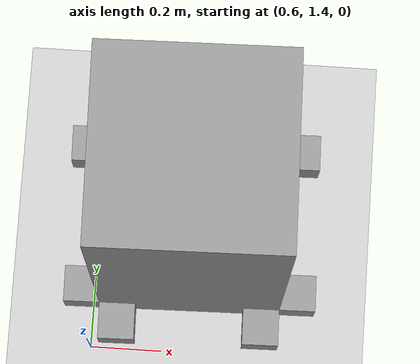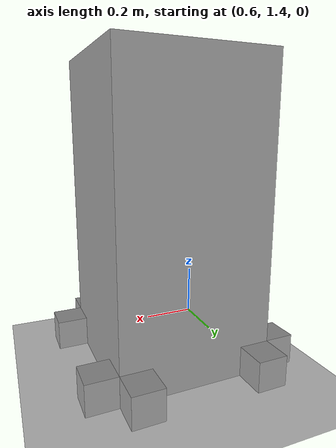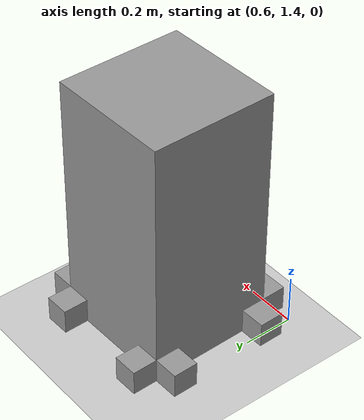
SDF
<sdf version="1.6">
 <world name="default">
  <model name="ground_plane">
   <static>1</static>
   <link name="link">
    <collision name="collision">
     <geometry><plane><normal>0 0 1</normal><size>100 100</size></plane></geometry>
     <surface><friction><ode><mu>100</mu><mu2>50</mu2></ode></friction></surface>
    </collision>
    <visual name="visual">
     <cast_shadows>0</cast_shadows>
     <geometry><plane><normal>0 0 1</normal><size>100 100</size></plane></geometry>
     <material>
      <script><uri>file://media/materials/scripts/gazebo.material</uri><name>Gazebo/Grey</name></script>
     </material>
    </visual>
   </link>
  </model>
  <model name="RSS_Debris">
   <link name="link_0">
    <inertial>
     <mass>0.35</mass>
     <inertia>
      <ixx>0.0364583</ixx>
      <ixy>0</ixy>
      <ixz>0</ixz>
      <iyy>0.0364583</iyy>
      <iyz>0</iyz>
      <izz>0.0145833</izz>
     </inertia>
    </inertial>
    <pose>1e-06 -0 0.4 0 -0 0</pose>
    <self_collide>1</self_collide>
    <visual name="visual">
     <pose>0 0 0.1 0 -0 0</pose>
     <geometry><box><size>0.5 0.5 1</size></box></geometry>
     <material>
      <lighting>1</lighting>
      <script><uri>file://media/materials/scripts/gazebo.material</uri><name>Gazebo/Grey</name></script>
      <shader type="pixel"><normal_map>__default__</normal_map></shader>
      <ambient>0.3 0.3 0.3 1</ambient>
      <diffuse>0.7 0.7 0.7 1</diffuse>
      <specular>0.01 0.01 0.01 1</specular>
      <emissive>0 0 0 1</emissive>
     </material>
    </visual>
    <collision name="collision">
     <pose>0 0 0.1 0 -0 0</pose>
     <geometry><box><size>0.5 0.5 1</size></box></geometry>
     <surface>
      <friction>
       <ode><mu>0</mu><mu2>0</mu2><fdir1>0 0 0</fdir1><slip1>0</slip1><slip2>0</slip2></ode>
       <torsional>
        <coefficient>0.98</coefficient>
        <patch_radius>0</patch_radius>
        <surface_radius>0</surface_radius>
        <use_patch_radius>1</use_patch_radius>
        <ode><slip>0</slip></ode>
       </torsional>
      </friction>
      <bounce><restitution_coefficient>0</restitution_coefficient><threshold>1e+06</threshold></bounce>
      <contact>
       <collide_without_contact>0</collide_without_contact>
       <collide_without_contact_bitmask>1</collide_without_contact_bitmask>
       <collide_bitmask>1</collide_bitmask>
       <ode>
        <soft_cfm>0</soft_cfm>
        <soft_erp>0.2</soft_erp>
        <kp>1e+13</kp>
        <kd>1</kd>
        <max_vel>0.01</max_vel>
        <min_depth>0</min_depth>
       </ode>
       <bullet>
        <split_impulse>1</split_impulse>
        <split_impulse_penetration_threshold>-0.01</split_impulse_penetration_threshold>
        <soft_cfm>0</soft_cfm>
        <soft_erp>0.2</soft_erp>
        <kp>1e+13</kp>
        <kd>1</kd>
       </bullet>
      </contact>
     </surface>
    </collision>
   </link>
   <link name="link_0_0">
    <inertial>
     <mass>0.35</mass>
     <inertia><ixx>0.0014</ixx><ixy>0</ixy><ixz>0</ixz><iyy>0.0014</iyy><iyz>0</iyz><izz>0.0014</izz></inertia>
    </inertial>
    <pose>-0.150008 -0.150038 0.05 -0 -1e-06 9.3e-05</pose>
    <visual name="visual">
     <geometry><sphere><radius>0.1</radius></sphere></geometry>
     <material>
      <lighting>1</lighting>
      <script><uri>file://media/materials/scripts/gazebo.material</uri><name>Gazebo/Grey</name></script>
      <shader type="pixel"><normal_map>__default__</normal_map></shader>
      <ambient>0.3 0.3 0.3 1</ambient>
      <diffuse>0.7 0.7 0.7 1</diffuse>
      <specular>0.01 0.01 0.01 1</specular>
      <emissive>0 0 0 1</emissive>
     </material>
    </visual>
    <collision name="collision">
     <geometry><sphere><radius>0.1</radius></sphere></geometry>
     <surface>
      <friction>
       <ode><mu>1</mu><mu2>1</mu2><fdir1>0 0 0</fdir1><slip1>0</slip1><slip2>0</slip2></ode>
       <torsional>
        <coefficient>1</coefficient>
        <patch_radius>0</patch_radius>
        <surface_radius>0</surface_radius>
        <use_patch_radius>1</use_patch_radius>
        <ode><slip>0</slip></ode>
       </torsional>
      </friction>
      <bounce><restitution_coefficient>0</restitution_coefficient><threshold>1e+06</threshold></bounce>
      <contact>
       <collide_without_contact>0</collide_without_contact>
       <collide_without_contact_bitmask>1</collide_without_contact_bitmask>
       <collide_bitmask>1</collide_bitmask>
       <ode>
        <soft_cfm>0</soft_cfm>
        <soft_erp>0.2</soft_erp>
        <kp>1e+13</kp>
        <kd>1</kd>
        <max_vel>0.01</max_vel>
        <min_depth>0</min_depth>
       </ode>
       <bullet>
        <split_impulse>1</split_impulse>
        <split_impulse_penetration_threshold>-0.01</split_impulse_penetration_threshold>
        <soft_cfm>0</soft_cfm>
        <soft_erp>0.2</soft_erp>
        <kp>1e+13</kp>
        <kd>1</kd>
       </bullet>
      </contact>
     </surface>
    </collision>
   </link>
   <link name="link_0_0_clone">
    <inertial>
     <mass>0.35</mass>
     <inertia><ixx>0.0014</ixx><ixy>0</ixy><ixz>0</ixz><iyy>0.0014</iyy><iyz>0</iyz><izz>0.0014</izz></inertia>
    </inertial>
    <pose>-0.150027 0.15 0.05 -0 -2e-06 0.000186</pose>
    <visual name="visual_0">
     <geometry><sphere><radius>0.1</radius></sphere></geometry>
     <material>
      <lighting>1</lighting>
      <script><uri>file://media/materials/scripts/gazebo.material</uri><name>Gazebo/Grey</name></script>
      <shader type="pixel"><normal_map>__default__</normal_map></shader>
      <ambient>0.3 0.3 0.3 1</ambient>
      <diffuse>0.7 0.7 0.7 1</diffuse>
      <specular>0.01 0.01 0.01 1</specular>
      <emissive>0 0 0 1</emissive>
     </material>
    </visual>
    <collision name="collision">
     <geometry><sphere><radius>0.1</radius></sphere></geometry>
     <surface>
      <friction>
       <ode><mu>1</mu><mu2>1</mu2><fdir1>0 0 0</fdir1><slip1>0</slip1><slip2>0</slip2></ode>
       <torsional>
        <coefficient>1</coefficient>
        <patch_radius>0</patch_radius>
        <surface_radius>0</surface_radius>
        <use_patch_radius>1</use_patch_radius>
        <ode><slip>0</slip></ode>
       </torsional>
      </friction>
      <bounce><restitution_coefficient>0</restitution_coefficient><threshold>1e+06</threshold></bounce>
      <contact>
       <collide_without_contact>0</collide_without_contact>
       <collide_without_contact_bitmask>1</collide_without_contact_bitmask>
       <collide_bitmask>1</collide_bitmask>
       <ode>
        <soft_cfm>0</soft_cfm>
        <soft_erp>0.2</soft_erp>
        <kp>1e+13</kp>
        <kd>1</kd>
        <max_vel>0.01</max_vel>
        <min_depth>0</min_depth>
       </ode>
       <bullet>
        <split_impulse>1</split_impulse>
        <split_impulse_penetration_threshold>-0.01</split_impulse_penetration_threshold>
        <soft_cfm>0</soft_cfm>
        <soft_erp>0.2</soft_erp>
        <kp>1e+13</kp>
        <kd>1</kd>
       </bullet>
      </contact>
     </surface>
    </collision>
   </link>
   <link name="link_0_0_clone_0">
    <inertial>
     <mass>0.35</mass>
     <inertia><ixx>0.0014</ixx><ixy>0</ixy><ixz>0</ixz><iyy>0.0014</iyy><iyz>0</iyz><izz>0.0014</izz></inertia>
    </inertial>
    <pose>0.15003 -0.15 0.05 -0 -2e-06 0.000186</pose>
    <visual name="visual_0">
     <geometry><sphere><radius>0.1</radius></sphere></geometry>
     <material>
      <lighting>1</lighting>
      <script><uri>file://media/materials/scripts/gazebo.material</uri><name>Gazebo/Grey</name></script>
      <shader type="pixel"><normal_map>__default__</normal_map></shader>
      <ambient>0.3 0.3 0.3 1</ambient>
      <diffuse>0.7 0.7 0.7 1</diffuse>
      <specular>0.01 0.01 0.01 1</specular>
      <emissive>0 0 0 1</emissive>
     </material>
    </visual>
    <collision name="collision">
     <geometry><sphere><radius>0.1</radius></sphere></geometry>
     <surface>
      <friction>
       <ode><mu>1</mu><mu2>1</mu2><fdir1>0 0 0</fdir1><slip1>0</slip1><slip2>0</slip2></ode>
       <torsional>
        <coefficient>1</coefficient>
        <patch_radius>0</patch_radius>
        <surface_radius>0</surface_radius>
        <use_patch_radius>1</use_patch_radius>
        <ode><slip>0</slip></ode>
       </torsional>
      </friction>
      <bounce><restitution_coefficient>0</restitution_coefficient><threshold>1e+06</threshold></bounce>
      <contact>
       <collide_without_contact>0</collide_without_contact>
       <collide_without_contact_bitmask>1</collide_without_contact_bitmask>
       <collide_bitmask>1</collide_bitmask>
       <ode>
        <soft_cfm>0</soft_cfm>
        <soft_erp>0.2</soft_erp>
        <kp>1e+13</kp>
        <kd>1</kd>
        <max_vel>0.01</max_vel>
        <min_depth>0</min_depth>
       </ode>
       <bullet>
        <split_impulse>1</split_impulse>
        <split_impulse_penetration_threshold>-0.01</split_impulse_penetration_threshold>
        <soft_cfm>0</soft_cfm>
        <soft_erp>0.2</soft_erp>
        <kp>1e+13</kp>
        <kd>1</kd>
       </bullet>
      </contact>
     </surface>
    </collision>
   </link>
   <link name="link_0_0_clone_1">
    <inertial>
     <mass>0.35</mass>
     <inertia><ixx>0.0014</ixx><ixy>0</ixy><ixz>0</ixz><iyy>0.0014</iyy><iyz>0</iyz><izz>0.0014</izz></inertia>
    </inertial>
    <pose>0.150002 0.150028 0.05 -0 -2e-06 0.000186</pose>
    <visual name="visual_0">
     <geometry><sphere><radius>0.1</radius></sphere></geometry>
     <material>
      <lighting>1</lighting>
      <script><uri>file://media/materials/scripts/gazebo.material</uri><name>Gazebo/Grey</name></script>
      <shader type="pixel"><normal_map>__default__</normal_map></shader>
      <ambient>0.3 0.3 0.3 1</ambient>
      <diffuse>0.7 0.7 0.7 1</diffuse>
      <specular>0.01 0.01 0.01 1</specular>
      <emissive>0 0 0 1</emissive>
     </material>
    </visual>
    <collision name="collision">
     <geometry><sphere><radius>0.1</radius></sphere></geometry>
     <surface>
      <friction>
       <ode><mu>1</mu><mu2>1</mu2><fdir1>0 0 0</fdir1><slip1>0</slip1><slip2>0</slip2></ode>
       <torsional>
        <coefficient>1</coefficient>
        <patch_radius>0</patch_radius>
        <surface_radius>0</surface_radius>
        <use_patch_radius>1</use_patch_radius>
        <ode><slip>0</slip></ode>
       </torsional>
      </friction>
      <bounce><restitution_coefficient>0</restitution_coefficient><threshold>1e+06</threshold></bounce>
      <contact>
       <collide_without_contact>0</collide_without_contact>
       <collide_without_contact_bitmask>1</collide_without_contact_bitmask>
       <collide_bitmask>1</collide_bitmask>
       <ode>
        <soft_cfm>0</soft_cfm>
        <soft_erp>0.2</soft_erp>
        <kp>1e+13</kp>
        <kd>1</kd>
        <max_vel>0.01</max_vel>
        <min_depth>0</min_depth>
       </ode>
       <bullet>
        <split_impulse>1</split_impulse>
        <split_impulse_penetration_threshold>-0.01</split_impulse_penetration_threshold>
        <soft_cfm>0</soft_cfm>
        <soft_erp>0.2</soft_erp>
        <kp>1e+13</kp>
        <kd>1</kd>
       </bullet>
      </contact>
     </surface>
    </collision>
   </link>
   <link name="link_1">
    <inertial>
     <mass>0.35</mass>
     <inertia>
      <ixx>0.00058333</ixx>
      <ixy>0</ixy>
      <ixz>0</ixz>
      <iyy>0.00058333</iyy>
      <iyz>0</iyz>
      <izz>0.00058333</izz>
     </inertia>
    </inertial>
    <pose>-0.199999 0.299999 -0.05 0 -0 0</pose>
    <self_collide>1</self_collide>
    <visual name="visual">
     <pose>0 0 0.1 0 -0 0</pose>
     <geometry><box><size>0.1 0.1 0.1</size></box></geometry>
     <material>
      <lighting>1</lighting>
      <script><uri>file://media/materials/scripts/gazebo.material</uri><name>Gazebo/Grey</name></script>
      <shader type="pixel"><normal_map>__default__</normal_map></shader>
      <ambient>0.3 0.3 0.3 1</ambient>
      <diffuse>0.7 0.7 0.7 1</diffuse>
      <specular>0.01 0.01 0.01 1</specular>
      <emissive>0 0 0 1</emissive>
     </material>
    </visual>
    <collision name="collision">
     <pose>0 0 0.1 0 -0 0</pose>
     <geometry><box><size>0.1 0.1 0.1</size></box></geometry>
     <surface>
      <friction>
       <ode><mu>0</mu><mu2>1</mu2><fdir1>0 0 0</fdir1><slip1>0</slip1><slip2>0</slip2></ode>
       <torsional>
        <coefficient>1</coefficient>
        <patch_radius>0</patch_radius>
        <surface_radius>0</surface_radius>
        <use_patch_radius>1</use_patch_radius>
        <ode><slip>0</slip></ode>
       </torsional>
      </friction>
      <bounce><restitution_coefficient>0</restitution_coefficient><threshold>1e+06</threshold></bounce>
      <contact>
       <collide_without_contact>0</collide_without_contact>
       <collide_without_contact_bitmask>1</collide_without_contact_bitmask>
       <collide_bitmask>1</collide_bitmask>
       <ode>
        <soft_cfm>0</soft_cfm>
        <soft_erp>0.2</soft_erp>
        <kp>1e+13</kp>
        <kd>1</kd>
        <max_vel>0.01</max_vel>
        <min_depth>0</min_depth>
       </ode>
       <bullet>
        <split_impulse>1</split_impulse>
        <split_impulse_penetration_threshold>-0.01</split_impulse_penetration_threshold>
        <soft_cfm>0</soft_cfm>
        <soft_erp>0.2</soft_erp>
        <kp>1e+13</kp>
        <kd>1</kd>
       </bullet>
      </contact>
     </surface>
    </collision>
   </link>
   <link name="link_1_clone">
    <inertial>
     <mass>0.35</mass>
     <inertia>
      <ixx>0.00058333</ixx>
      <ixy>0</ixy>
      <ixz>0</ixz>
      <iyy>0.00058333</iyy>
      <iyz>0</iyz>
      <izz>0.00058333</izz>
     </inertia>
    </inertial>
    <pose>0.199999 0.3 -0.05 0 -0 0</pose>
    <self_collide>1</self_collide>
    <visual name="visual">
     <pose>0 0 0.1 0 -0 0</pose>
     <geometry><box><size>0.1 0.1 0.1</size></box></geometry>
     <material>
      <lighting>1</lighting>
      <script><uri>file://media/materials/scripts/gazebo.material</uri><name>Gazebo/Grey</name></script>
      <shader type="pixel"><normal_map>__default__</normal_map></shader>
      <ambient>0.3 0.3 0.3 1</ambient>
      <diffuse>0.7 0.7 0.7 1</diffuse>
      <specular>0.01 0.01 0.01 1</specular>
      <emissive>0 0 0 1</emissive>
     </material>
    </visual>
    <collision name="collision">
     <pose>0 0 0.1 0 -0 0</pose>
     <geometry><box><size>0.1 0.1 0.1</size></box></geometry>
     <surface>
      <friction>
       <ode><mu>0</mu><mu2>0</mu2><fdir1>0 0 0</fdir1><slip1>0</slip1><slip2>0</slip2></ode>
       <torsional>
        <coefficient>1</coefficient>
        <patch_radius>0</patch_radius>
        <surface_radius>0</surface_radius>
        <use_patch_radius>1</use_patch_radius>
        <ode><slip>0</slip></ode>
       </torsional>
      </friction>
      <bounce><restitution_coefficient>0</restitution_coefficient><threshold>1e+06</threshold></bounce>
      <contact>
       <collide_without_contact>0</collide_without_contact>
       <collide_without_contact_bitmask>1</collide_without_contact_bitmask>
       <collide_bitmask>1</collide_bitmask>
       <ode>
        <soft_cfm>0</soft_cfm>
        <soft_erp>0.2</soft_erp>
        <kp>1e+13</kp>
        <kd>1</kd>
        <max_vel>0.01</max_vel>
        <min_depth>0</min_depth>
       </ode>
       <bullet>
        <split_impulse>1</split_impulse>
        <split_impulse_penetration_threshold>-0.01</split_impulse_penetration_threshold>
        <soft_cfm>0</soft_cfm>
        <soft_erp>0.2</soft_erp>
        <kp>1e+13</kp>
        <kd>1</kd>
       </bullet>
      </contact>
     </surface>
    </collision>
   </link>
   <link name="link_1_clone_0">
    <inertial>
     <mass>0.35</mass>
     <inertia>
      <ixx>0.00058333</ixx>
      <ixy>0</ixy>
      <ixz>0</ixz>
      <iyy>0.00058333</iyy>
      <iyz>0</iyz>
      <izz>0.00058333</izz>
     </inertia>
    </inertial>
    <pose>-0.299999 0.2 -0.05 0 -0 0</pose>
    <self_collide>1</self_collide>
    <visual name="visual">
     <pose>0 0 0.1 0 -0 0</pose>
     <geometry><box><size>0.1 0.1 0.1</size></box></geometry>
     <material>
      <lighting>1</lighting>
      <script><uri>file://media/materials/scripts/gazebo.material</uri><name>Gazebo/Grey</name></script>
      <shader type="pixel"><normal_map>__default__</normal_map></shader>
      <ambient>0.3 0.3 0.3 1</ambient>
      <diffuse>0.7 0.7 0.7 1</diffuse>
      <specular>0.01 0.01 0.01 1</specular>
      <emissive>0 0 0 1</emissive>
     </material>
    </visual>
    <collision name="collision">
     <pose>0 0 0.1 0 -0 0</pose>
     <geometry><box><size>0.1 0.1 0.1</size></box></geometry>
     <surface>
      <friction>
       <ode><mu>0</mu><mu2>0</mu2><fdir1>0 0 0</fdir1><slip1>0</slip1><slip2>0</slip2></ode>
       <torsional>
        <coefficient>1</coefficient>
        <patch_radius>0</patch_radius>
        <surface_radius>0</surface_radius>
        <use_patch_radius>1</use_patch_radius>
        <ode><slip>0</slip></ode>
       </torsional>
      </friction>
      <bounce><restitution_coefficient>0</restitution_coefficient><threshold>1e+06</threshold></bounce>
      <contact>
       <collide_without_contact>0</collide_without_contact>
       <collide_without_contact_bitmask>1</collide_without_contact_bitmask>
       <collide_bitmask>1</collide_bitmask>
       <ode>
        <soft_cfm>0</soft_cfm>
        <soft_erp>0.2</soft_erp>
        <kp>1e+13</kp>
        <kd>1</kd>
        <max_vel>0.01</max_vel>
        <min_depth>0</min_depth>
       </ode>
       <bullet>
        <split_impulse>1</split_impulse>
        <split_impulse_penetration_threshold>-0.01</split_impulse_penetration_threshold>
        <soft_cfm>0</soft_cfm>
        <soft_erp>0.2</soft_erp>
        <kp>1e+13</kp>
        <kd>1</kd>
       </bullet>
      </contact>
     </surface>
    </collision>
   </link>
   <link name="link_1_clone_1">
    <inertial>
     <mass>0.35</mass>
     <inertia>
      <ixx>0.00058333</ixx>
      <ixy>0</ixy>
      <ixz>0</ixz>
      <iyy>0.00058333</iyy>
      <iyz>0</iyz>
      <izz>0.00058333</izz>
     </inertia>
    </inertial>
    <pose>-0.299999 -0.2 -0.05 0 -0 0</pose>
    <self_collide>1</self_collide>
    <visual name="visual">
     <pose>0 0 0.1 0 -0 0</pose>
     <geometry><box><size>0.1 0.1 0.1</size></box></geometry>
     <material>
      <lighting>1</lighting>
      <script><uri>file://media/materials/scripts/gazebo.material</uri><name>Gazebo/Grey</name></script>
      <shader type="pixel"><normal_map>__default__</normal_map></shader>
      <ambient>0.3 0.3 0.3 1</ambient>
      <diffuse>0.7 0.7 0.7 1</diffuse>
      <specular>0.01 0.01 0.01 1</specular>
      <emissive>0 0 0 1</emissive>
     </material>
    </visual>
    <collision name="collision">
     <pose>0 0 0.1 0 -0 0</pose>
     <geometry><box><size>0.1 0.1 0.1</size></box></geometry>
     <surface>
      <friction>
       <ode><mu>0</mu><mu2>0</mu2><fdir1>0 0 0</fdir1><slip1>0</slip1><slip2>0</slip2></ode>
       <torsional>
        <coefficient>1</coefficient>
        <patch_radius>0</patch_radius>
        <surface_radius>0</surface_radius>
        <use_patch_radius>1</use_patch_radius>
        <ode><slip>0</slip></ode>
       </torsional>
      </friction>
      <bounce><restitution_coefficient>0</restitution_coefficient><threshold>1e+06</threshold></bounce>
      <contact>
       <collide_without_contact>0</collide_without_contact>
       <collide_without_contact_bitmask>1</collide_without_contact_bitmask>
       <collide_bitmask>1</collide_bitmask>
       <ode>
        <soft_cfm>0</soft_cfm>
        <soft_erp>0.2</soft_erp>
        <kp>1e+13</kp>
        <kd>1</kd>
        <max_vel>0.01</max_vel>
        <min_depth>0</min_depth>
       </ode>
       <bullet>
        <split_impulse>1</split_impulse>
        <split_impulse_penetration_threshold>-0.01</split_impulse_penetration_threshold>
        <soft_cfm>0</soft_cfm>
        <soft_erp>0.2</soft_erp>
        <kp>1e+13</kp>
        <kd>1</kd>
       </bullet>
      </contact>
     </surface>
    </collision>
   </link>
   <link name="link_1_clone_2">
    <inertial>
     <mass>0.35</mass>
     <inertia>
      <ixx>0.00058333</ixx>
      <ixy>0</ixy>
      <ixz>0</ixz>
      <iyy>0.00058333</iyy>
      <iyz>0</iyz>
      <izz>0.00058333</izz>
     </inertia>
    </inertial>
    <pose>0.2 -0.3 -0.05 0 -0 0</pose>
    <self_collide>1</self_collide>
    <visual name="visual">
     <pose>0 0 0.1 0 -0 0</pose>
     <geometry><box><size>0.1 0.1 0.1</size></box></geometry>
     <material>
      <lighting>1</lighting>
      <script><uri>file://media/materials/scripts/gazebo.material</uri><name>Gazebo/Grey</name></script>
      <shader type="pixel"><normal_map>__default__</normal_map></shader>
      <ambient>0.3 0.3 0.3 1</ambient>
      <diffuse>0.7 0.7 0.7 1</diffuse>
      <specular>0.01 0.01 0.01 1</specular>
      <emissive>0 0 0 1</emissive>
     </material>
    </visual>
    <collision name="collision">
     <pose>0 0 0.1 0 -0 0</pose>
     <geometry><box><size>0.1 0.1 0.1</size></box></geometry>
     <surface>
      <friction>
       <ode><mu>0</mu><mu2>0</mu2><fdir1>0 0 0</fdir1><slip1>0</slip1><slip2>0</slip2></ode>
       <torsional>
        <coefficient>1</coefficient>
        <patch_radius>0</patch_radius>
        <surface_radius>0</surface_radius>
        <use_patch_radius>1</use_patch_radius>
        <ode><slip>0</slip></ode>
       </torsional>
      </friction>
      <bounce><restitution_coefficient>0</restitution_coefficient><threshold>1e+06</threshold></bounce>
      <contact>
       <collide_without_contact>0</collide_without_contact>
       <collide_without_contact_bitmask>1</collide_without_contact_bitmask>
       <collide_bitmask>1</collide_bitmask>
       <ode>
        <soft_cfm>0</soft_cfm>
        <soft_erp>0.2</soft_erp>
        <kp>1e+13</kp>
        <kd>1</kd>
        <max_vel>0.01</max_vel>
        <min_depth>0</min_depth>
       </ode>
       <bullet>
        <split_impulse>1</split_impulse>
        <split_impulse_penetration_threshold>-0.01</split_impulse_penetration_threshold>
        <soft_cfm>0</soft_cfm>
        <soft_erp>0.2</soft_erp>
        <kp>1e+13</kp>
        <kd>1</kd>
       </bullet>
      </contact>
     </surface>
    </collision>
   </link>
   <link name="link_1_clone_3">
    <inertial>
     <mass>0.35</mass>
     <inertia>
      <ixx>0.00058333</ixx>
      <ixy>0</ixy>
      <ixz>0</ixz>
      <iyy>0.00058333</iyy>
      <iyz>0</iyz>
      <izz>0.00058333</izz>
     </inertia>
    </inertial>
    <pose>-0.2 -0.3 -0.05 0 -0 0</pose>
    <self_collide>1</self_collide>
    <visual name="visual">
     <pose>0 0 0.1 0 -0 0</pose>
     <geometry><box><size>0.1 0.1 0.1</size></box></geometry>
     <material>
      <lighting>1</lighting>
      <script><uri>file://media/materials/scripts/gazebo.material</uri><name>Gazebo/Grey</name></script>
      <shader type="pixel"><normal_map>__default__</normal_map></shader>
      <ambient>0.3 0.3 0.3 1</ambient>
      <diffuse>0.7 0.7 0.7 1</diffuse>
      <specular>0.01 0.01 0.01 1</specular>
      <emissive>0 0 0 1</emissive>
     </material>
    </visual>
    <collision name="collision">
     <pose>0 0 0.1 0 -0 0</pose>
     <geometry><box><size>0.1 0.1 0.1</size></box></geometry>
     <surface>
      <friction>
       <ode><mu>0</mu><mu2>0</mu2><fdir1>0 0 0</fdir1><slip1>0</slip1><slip2>0</slip2></ode>
       <torsional>
        <coefficient>1</coefficient>
        <patch_radius>0</patch_radius>
        <surface_radius>0</surface_radius>
        <use_patch_radius>1</use_patch_radius>
        <ode><slip>0</slip></ode>
       </torsional>
      </friction>
      <bounce><restitution_coefficient>0</restitution_coefficient><threshold>1e+06</threshold></bounce>
      <contact>
       <collide_without_contact>0</collide_without_contact>
       <collide_without_contact_bitmask>1</collide_without_contact_bitmask>
       <collide_bitmask>1</collide_bitmask>
       <ode>
        <soft_cfm>0</soft_cfm>
        <soft_erp>0.2</soft_erp>
        <kp>1e+13</kp>
        <kd>1</kd>
        <max_vel>0.01</max_vel>
        <min_depth>0</min_depth>
       </ode>
       <bullet>
        <split_impulse>1</split_impulse>
        <split_impulse_penetration_threshold>-0.01</split_impulse_penetration_threshold>
        <soft_cfm>0</soft_cfm>
        <soft_erp>0.2</soft_erp>
        <kp>1e+13</kp>
        <kd>1</kd>
       </bullet>
      </contact>
     </surface>
    </collision>
   </link>
   <link name="link_1_clone_4">
    <inertial>
     <mass>0.35</mass>
     <inertia>
      <ixx>0.00058333</ixx>
      <ixy>0</ixy>
      <ixz>0</ixz>
      <iyy>0.00058333</iyy>
      <iyz>0</iyz>
      <izz>0.00058333</izz>
     </inertia>
    </inertial>
    <pose>0.3 -0.200001 -0.05 0 -0 0</pose>
    <self_collide>1</self_collide>
    <visual name="visual">
     <pose>0 0 0.1 0 -0 0</pose>
     <geometry><box><size>0.1 0.1 0.1</size></box></geometry>
     <material>
      <lighting>1</lighting>
      <script><uri>file://media/materials/scripts/gazebo.material</uri><name>Gazebo/Grey</name></script>
      <shader type="pixel"><normal_map>__default__</normal_map></shader>
      <ambient>0.3 0.3 0.3 1</ambient>
      <diffuse>0.7 0.7 0.7 1</diffuse>
      <specular>0.01 0.01 0.01 1</specular>
      <emissive>0 0 0 1</emissive>
     </material>
    </visual>
    <collision name="collision">
     <pose>0 0 0.1 0 -0 0</pose>
     <geometry><box><size>0.1 0.1 0.1</size></box></geometry>
     <surface>
      <friction>
       <ode><mu>0</mu><mu2>0</mu2><fdir1>0 0 0</fdir1><slip1>0</slip1><slip2>0</slip2></ode>
       <torsional>
        <coefficient>1</coefficient>
        <patch_radius>0</patch_radius>
        <surface_radius>0</surface_radius>
        <use_patch_radius>1</use_patch_radius>
        <ode><slip>0</slip></ode>
       </torsional>
      </friction>
      <bounce><restitution_coefficient>0</restitution_coefficient><threshold>1e+06</threshold></bounce>
      <contact>
       <collide_without_contact>0</collide_without_contact>
       <collide_without_contact_bitmask>1</collide_without_contact_bitmask>
       <collide_bitmask>1</collide_bitmask>
       <ode>
        <soft_cfm>0</soft_cfm>
        <soft_erp>0.2</soft_erp>
        <kp>1e+13</kp>
        <kd>1</kd>
        <max_vel>0.01</max_vel>
        <min_depth>0</min_depth>
       </ode>
       <bullet>
        <split_impulse>1</split_impulse>
        <split_impulse_penetration_threshold>-0.01</split_impulse_penetration_threshold>
        <soft_cfm>0</soft_cfm>
        <soft_erp>0.2</soft_erp>
        <kp>1e+13</kp>
        <kd>1</kd>
       </bullet>
      </contact>
     </surface>
    </collision>
   </link>
   <link name="link_1_clone_5">
    <inertial>
     <mass>0.35</mass>
     <inertia>
      <ixx>0.00058333</ixx>
      <ixy>0</ixy>
      <ixz>0</ixz>
      <iyy>0.00058333</iyy>
      <iyz>0</iyz>
      <izz>0.00058333</izz>
     </inertia>
    </inertial>
    <pose>0.3 0.199999 -0.05 0 -0 0</pose>
    <self_collide>1</self_collide>
    <visual name="visual">
     <pose>0 0 0.1 0 -0 0</pose>
     <geometry><box><size>0.1 0.1 0.1</size></box></geometry>
     <material>
      <lighting>1</lighting>
      <script><uri>file://media/materials/scripts/gazebo.material</uri><name>Gazebo/Grey</name></script>
      <shader type="pixel"><normal_map>__default__</normal_map></shader>
      <ambient>0.3 0.3 0.3 1</ambient>
      <diffuse>0.7 0.7 0.7 1</diffuse>
      <specular>0.01 0.01 0.01 1</specular>
      <emissive>0 0 0 1</emissive>
     </material>
    </visual>
    <collision name="collision">
     <pose>0 0 0.1 0 -0 0</pose>
     <geometry><box><size>0.1 0.1 0.1</size></box></geometry>
     <surface>
      <friction>
       <ode><mu>0</mu><mu2>0</mu2><fdir1>0 0 0</fdir1><slip1>0</slip1><slip2>0</slip2></ode>
       <torsional>
        <coefficient>1</coefficient>
        <patch_radius>0</patch_radius>
        <surface_radius>0</surface_radius>
        <use_patch_radius>1</use_patch_radius>
        <ode><slip>0</slip></ode>
       </torsional>
      </friction>
      <bounce><restitution_coefficient>0</restitution_coefficient><threshold>1e+06</threshold></bounce>
      <contact>
       <collide_without_contact>0</collide_without_contact>
       <collide_without_contact_bitmask>1</collide_without_contact_bitmask>
       <collide_bitmask>1</collide_bitmask>
       <ode>
        <soft_cfm>0</soft_cfm>
        <soft_erp>0.2</soft_erp>
        <kp>1e+13</kp>
        <kd>1</kd>
        <max_vel>0.01</max_vel>
        <min_depth>0</min_depth>
       </ode>
       <bullet>
        <split_impulse>1</split_impulse>
        <split_impulse_penetration_threshold>-0.01</split_impulse_penetration_threshold>
        <soft_cfm>0</soft_cfm>
        <soft_erp>0.2</soft_erp>
        <kp>1e+13</kp>
        <kd>1</kd>
       </bullet>
      </contact>
     </surface>
    </collision>
   </link>
   <joint name="link_0_JOINT_0_0" type="revolute">
    <parent>link_0</parent>
    <child>link_0_0</child>
    <axis>
     <xyz>1 0 0</xyz>
     <use_parent_model_frame>0</use_parent_model_frame>
     <limit>
      <lower>-1.79769e+308</lower>
      <upper>1.79769e+308</upper>
      <effort>-1</effort>
      <velocity>-1</velocity>
     </limit>
     <dynamics>
      <spring_reference>0</spring_reference>
      <spring_stiffness>0</spring_stiffness>
      <damping>0</damping>
      <friction>0</friction>
     </dynamics>
    </axis>
    <physics>
     <ode><limit><cfm>0</cfm><erp>0.2</erp></limit><suspension><cfm>0</cfm><erp>0.2</erp></suspension></ode>
    </physics>
   </joint>
   <joint name="link_0_JOINT_0" type="fixed">
    <parent>link_0</parent>
    <child>link_1</child>
    <physics>
     <ode><limit><cfm>0</cfm><erp>0.2</erp></limit><suspension><cfm>0</cfm><erp>0.2</erp></suspension></ode>
    </physics>
   </joint>
   <joint name="link_0_JOINT_1_0" type="revolute">
    <parent>link_0</parent>
    <child>link_0_0_clone</child>
    <axis>
     <xyz>1 0 0</xyz>
     <use_parent_model_frame>0</use_parent_model_frame>
     <limit>
      <lower>-1.79769e+308</lower>
      <upper>1.79769e+308</upper>
      <effort>-1</effort>
      <velocity>-1</velocity>
     </limit>
     <dynamics>
      <spring_reference>0</spring_reference>
      <spring_stiffness>0</spring_stiffness>
      <damping>0</damping>
      <friction>0</friction>
     </dynamics>
    </axis>
    <physics>
     <ode><limit><cfm>0</cfm><erp>0.2</erp></limit><suspension><cfm>0</cfm><erp>0.2</erp></suspension></ode>
    </physics>
   </joint>
   <joint name="link_0_JOINT_1" type="fixed">
    <parent>link_0</parent>
    <child>link_1_clone</child>
    <physics>
     <ode><limit><cfm>0</cfm><erp>0.2</erp></limit><suspension><cfm>0</cfm><erp>0.2</erp></suspension></ode>
    </physics>
   </joint>
   <joint name="link_0_JOINT_2_0" type="revolute">
    <parent>link_0</parent>
    <child>link_0_0_clone_0</child>
    <axis>
     <xyz>1 0 0</xyz>
     <use_parent_model_frame>0</use_parent_model_frame>
     <limit>
      <lower>-1.79769e+308</lower>
      <upper>1.79769e+308</upper>
      <effort>-1</effort>
      <velocity>-1</velocity>
     </limit>
     <dynamics>
      <spring_reference>0</spring_reference>
      <spring_stiffness>0</spring_stiffness>
      <damping>0</damping>
      <friction>0</friction>
     </dynamics>
    </axis>
    <physics>
     <ode><limit><cfm>0</cfm><erp>0.2</erp></limit><suspension><cfm>0</cfm><erp>0.2</erp></suspension></ode>
    </physics>
   </joint>
   <joint name="link_0_JOINT_2" type="fixed">
    <parent>link_0</parent>
    <child>link_1_clone_0</child>
    <physics>
     <ode><limit><cfm>0</cfm><erp>0.2</erp></limit><suspension><cfm>0</cfm><erp>0.2</erp></suspension></ode>
    </physics>
   </joint>
   <joint name="link_0_JOINT_3_0" type="revolute">
    <parent>link_0</parent>
    <child>link_0_0_clone_1</child>
    <axis>
     <xyz>1 0 0</xyz>
     <use_parent_model_frame>0</use_parent_model_frame>
     <limit>
      <lower>-1.79769e+308</lower>
      <upper>1.79769e+308</upper>
      <effort>-1</effort>
      <velocity>-1</velocity>
     </limit>
     <dynamics>
      <spring_reference>0</spring_reference>
      <spring_stiffness>0</spring_stiffness>
      <damping>0</damping>
      <friction>0</friction>
     </dynamics>
    </axis>
    <physics>
     <ode><limit><cfm>0</cfm><erp>0.2</erp></limit><suspension><cfm>0</cfm><erp>0.2</erp></suspension></ode>
    </physics>
   </joint>
   <joint name="link_0_JOINT_3" type="fixed">
    <parent>link_0</parent>
    <child>link_1_clone_1</child>
    <physics>
     <ode><limit><cfm>0</cfm><erp>0.2</erp></limit><suspension><cfm>0</cfm><erp>0.2</erp></suspension></ode>
    </physics>
   </joint>
   <joint name="link_0_JOINT_4" type="fixed">
    <parent>link_0</parent>
    <child>link_1_clone_2</child>
    <physics>
     <ode><limit><cfm>0</cfm><erp>0.2</erp></limit><suspension><cfm>0</cfm><erp>0.2</erp></suspension></ode>
    </physics>
   </joint>
   <joint name="link_0_JOINT_5" type="fixed">
    <parent>link_0</parent>
    <child>link_1_clone_3</child>
    <physics>
     <ode><limit><cfm>0</cfm><erp>0.2</erp></limit><suspension><cfm>0</cfm><erp>0.2</erp></suspension></ode>
    </physics>
   </joint>
   <joint name="link_0_JOINT_6" type="fixed">
    <parent>link_0</parent>
    <child>link_1_clone_4</child>
    <physics>
     <ode><limit><cfm>0</cfm><erp>0.2</erp></limit><suspension><cfm>0</cfm><erp>0.2</erp></suspension></ode>
    </physics>
   </joint>
   <joint name="link_0_JOINT_7" type="fixed">
    <parent>link_0</parent>
    <child>link_1_clone_5</child>
    <physics>
     <ode><limit><cfm>0</cfm><erp>0.2</erp></limit><suspension><cfm>0</cfm><erp>0.2</erp></suspension></ode>
    </physics>
   </joint>
   <static>0</static>
   <plugin name="Debris_IMU_plugin" filename="libDebris_IMU_plugin.so"/>
   <pose>0.867336 1.76414 0.049999 2e-06 -1.2e-05 0.021258</pose>
  </model>
 </world>
</sdf>
